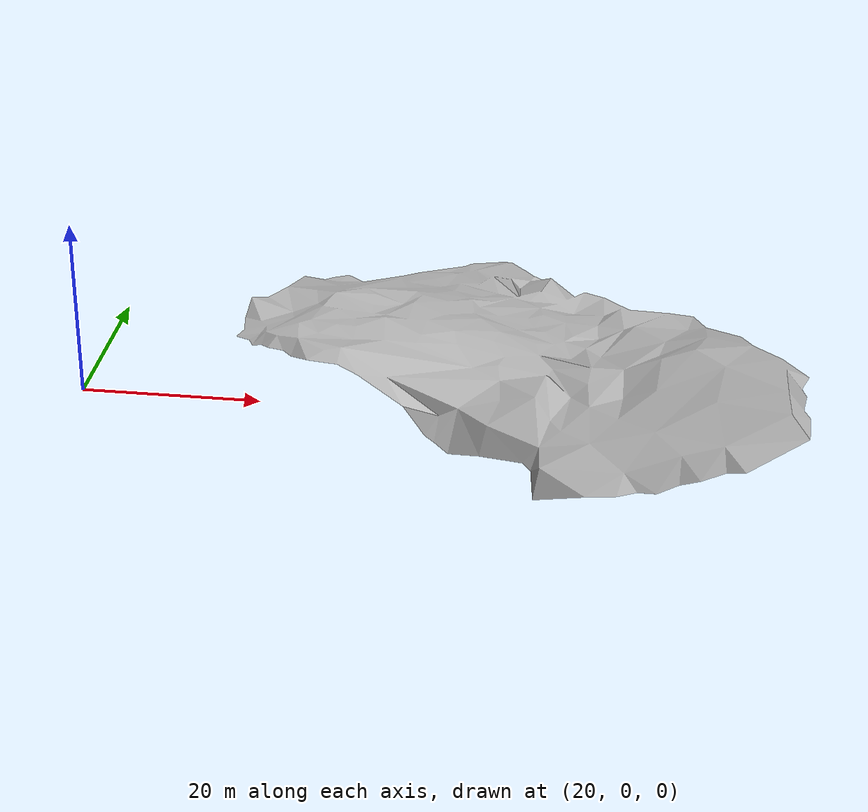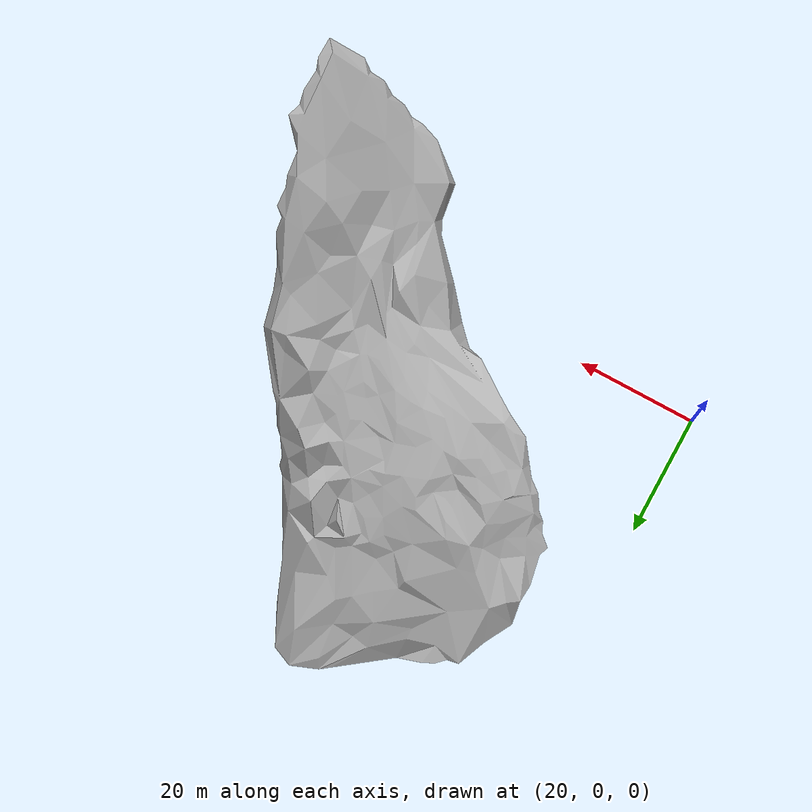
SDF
<?xml version="1.0" ?>
<sdf version="1.4">
  <model name="galtelli_small_avalanche">
    <static>true</static>

    <link name="galtelli_small_avalanche">
      <collision name="collision">
	<geometry>
            <mesh>
	      <uri>model://galtelli_small_avalanche/galtelli_small_avalanche.dae</uri>
	    </mesh>
          </geometry>
      </collision>
      <visual name="visual">
	<geometry>
            <mesh>
	      <uri>model://galtelli_small_avalanche/galtelli_small_avalanche.dae</uri>
	    </mesh>
          </geometry>
        <material>
          <script>
            <uri>file://materials/scripts/iai-rescue-galtelli.material</uri>
	     <name>IAI/GaltelliSmallAvalanche</name>
          </script>
        </material>
      </visual>
    </link>

  </model>
</sdf>
